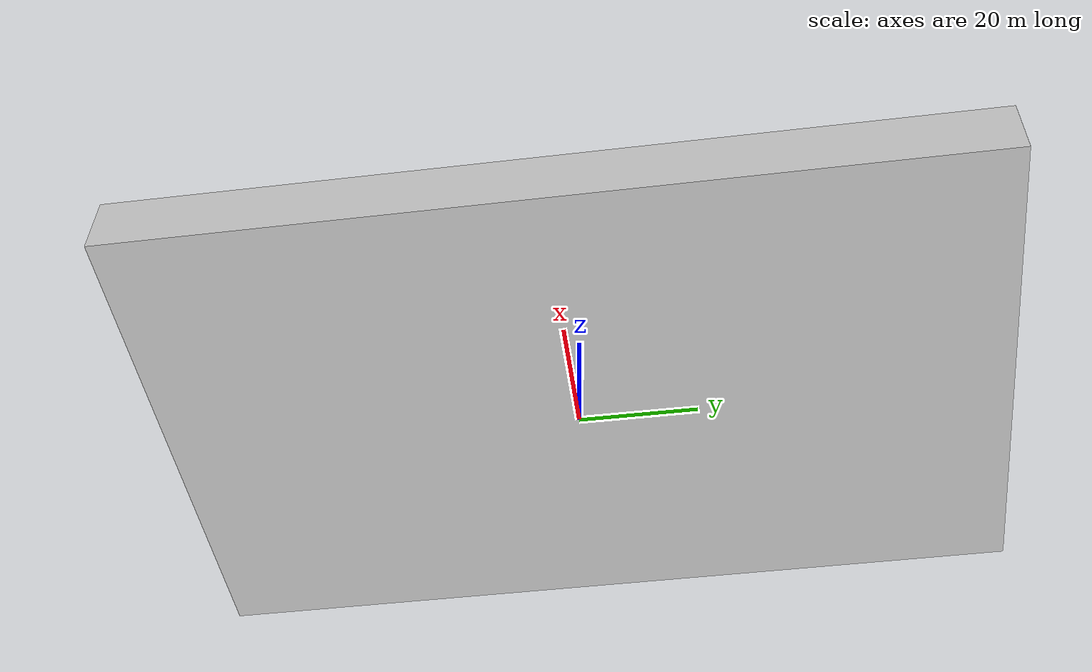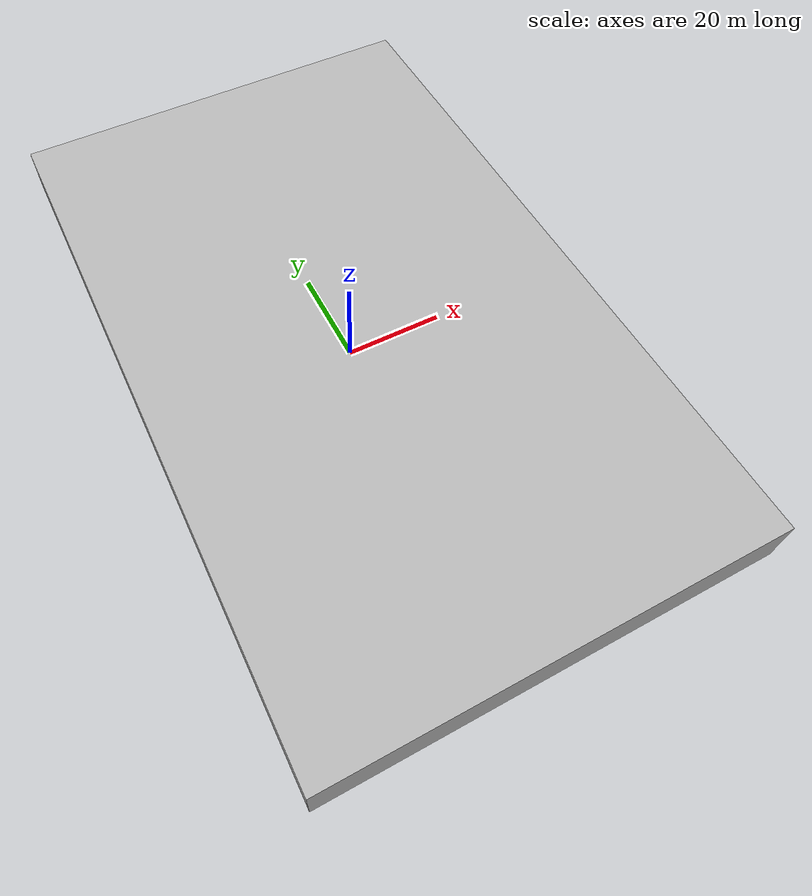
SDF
<?xml version="1.0" ?>
<sdf version="1.6">
  <model name="water2">
    <static>true</static>
      <link name="water2">
        <pose frame=''>0 0 0 0 0 0</pose>
          <collision name="water2">
            <geometry>
              <mesh>
                <uri>model://water2/model.dae</uri>
              </mesh>
            </geometry>
          </collision>
          <visual name="water2">
          <cast_shadows>false</cast_shadows>
            <geometry>
              <mesh>
                <uri>model://water2/model.dae</uri>
              </mesh>
            </geometry>
            <material>
              <script>
                <uri>model://water2/model.dae</uri>
                <name>water2</name>
              </script>
            </material>
          </visual>
      </link>
  </model>
</sdf>
